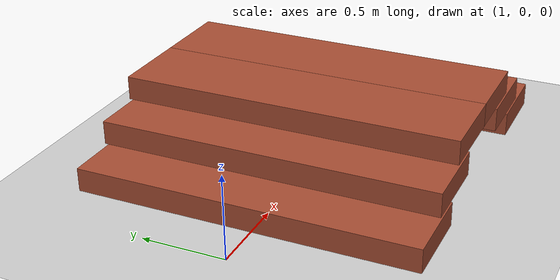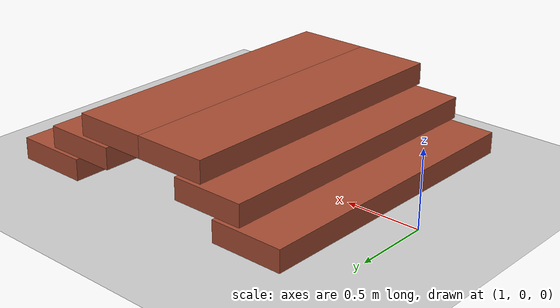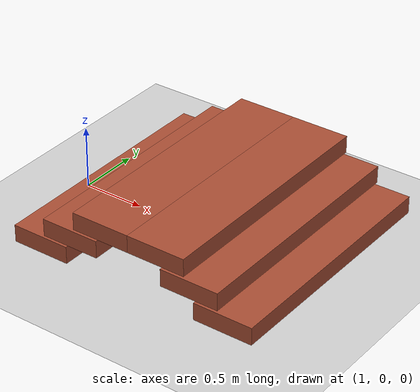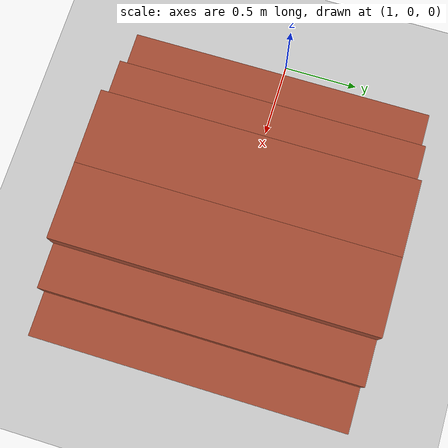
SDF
<?xml version="1.0" ?>
<sdf version="1.4">
<!-- standard world configurations -->
  <world name="default">
    <physics type='ode'>
      <gravity>0 0 -9.81</gravity>
      <!-- max step size has to be a multiple of the desired task rate-->
      <max_step_size>0.001</max_step_size>
      <real_time_factor>1</real_time_factor>
    </physics>
    <!-- A global light source -->
    <include>
      <uri>model://sun</uri>
    </include>
    <!-- A ground plane -->
    <include>
      <uri>model://ground_plane</uri>
    </include>

    <include>
      <name>asphalt_plane</name>
      <uri>model://asphalt_plane</uri>
      <!-- side pipe-->
      <pose>0 0 -0.05 0 0 0</pose>
    </include>

    <!-- first stair starts at 0.8-->

    <include>
      <name>brick_pallet</name>
      <uri>model://brick_pallet</uri>
      <pose>1.4 0 0.16 0 0 0</pose>

    </include>

    <include>
      <name>brick_pallet</name>
      <uri>model://brick_pallet</uri>
      <pose>1.68 0 0.32 0 0 0 </pose>
    </include>

    <include>
      <name>brick_pallet</name>
      <uri>model://brick_pallet</uri>
      <pose>1.96 0 0.48 0 0 0 </pose>
    </include>

    <include>
      <name>brick_pallet</name>
      <uri>model://brick_pallet</uri>
      <pose>2.44 0 0.48 0 0 0 </pose>
    </include>

    <!-- second stair starts at 2.72-->

    <include>
      <name>brick_pallet</name>
      <uri>model://brick_pallet</uri>
      <pose>2.72 0 0.32 0 0 0</pose>
    </include>

    <include>
      <name>brick_pallet</name>
      <uri>model://brick_pallet</uri>
      <pose>3 0 0.16 0 0 0 </pose>
    </include>

  </world>
</sdf>

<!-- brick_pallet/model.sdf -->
<sdf version="1.5">
  <model name="brick_pallet">
    <static>true</static>
    <link name="link">
      <collision name="collision">
        <geometry>
          <box>
            <size>0.48 2 .14</size>
          </box>
        </geometry>
      </collision>
      <visual name="visual">
        <cast_shadows>false</cast_shadows>
        <geometry>
          <box>
            <size>0.48 2 .14</size>
          </box>
        </geometry>
	<material>
        <script>
          <uri>file://media/materials/scripts/gazebo.material</uri>
          <name>Gazebo/Bricks</name>
        </script>
        <ambient>1 1 1 1</ambient>
        </material>
      </visual>
    </link>
  </model>
</sdf>
